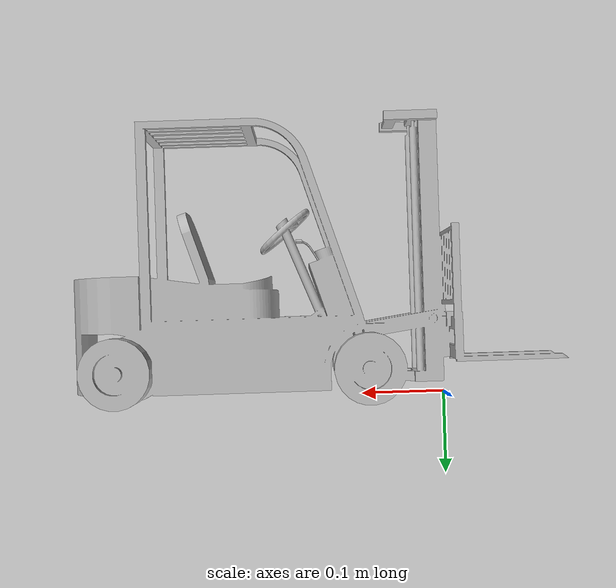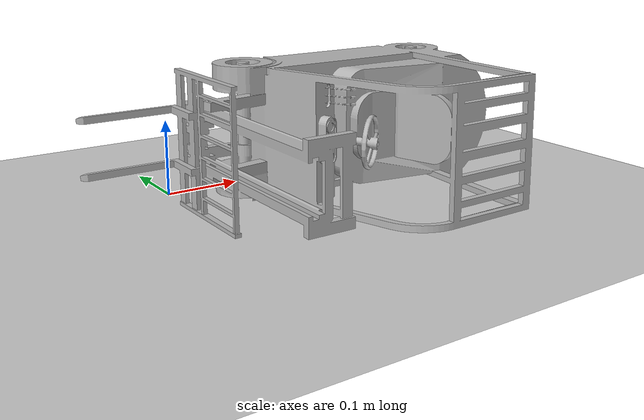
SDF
<?xml version="1.0"?>
<sdf version="1.4">
  <world name="default">
    <include>
      <uri>model://ground_plane</uri>
    </include>
    <include>
      <uri>model://sun</uri>
    </include>
    <model name="my_mesh">
      <pose>0 0 0 1.5708 0 0</pose>
      <static>true</static>
      <link name="body">
        <visual name="visual">
          <geometry>
            <mesh>
            <uri>model://sample.stl</uri>
          </mesh>
          </geometry>
        </visual>
      </link>
    </model>
  </world>
</sdf>
